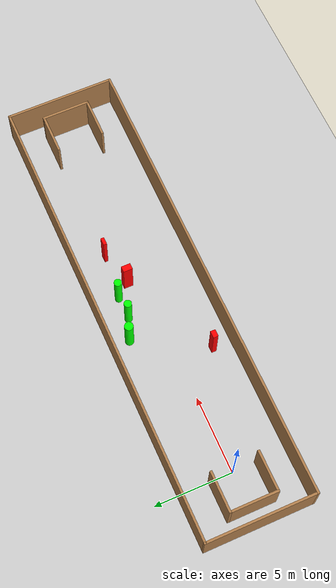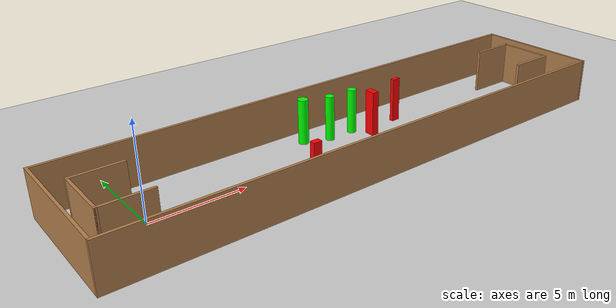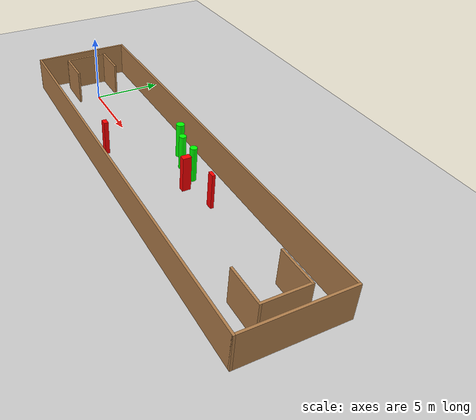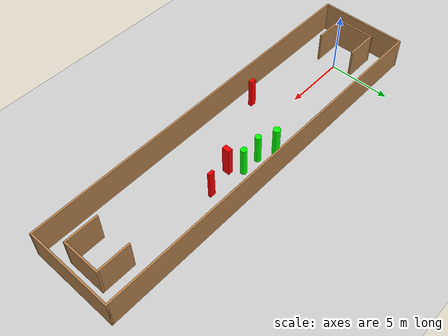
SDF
<sdf version="1.7">
 <world name="default">
  <light name="sun" type="directional">
   <pose>0 0 10 0 -0 0</pose>
   <diffuse>0.8 0.8 0.8 1</diffuse>
   <specular>0.2 0.2 0.2 1</specular>
   <attenuation>
    <range>1000</range>
    <constant>0.9</constant>
    <linear>0.01</linear>
    <quadratic>0.001</quadratic>
   </attenuation>
   <direction>-0.5 0.1 -0.9</direction>
   <spot><inner_angle>0</inner_angle><outer_angle>0</outer_angle><falloff>0</falloff></spot>
  </light>
  <model name="ground_plane">
   <static>1</static>
   <link name="link">
    <collision name="collision">
     <geometry><plane><normal>0 0 1</normal><size>100 100</size></plane></geometry>
     <surface>
      <contact><collide_bitmask>65535</collide_bitmask></contact>
      <friction><ode><mu>100</mu><mu2>50</mu2></ode></friction>
     </surface>
    </collision>
    <visual name="visual">
     <cast_shadows>0</cast_shadows>
     <geometry><plane><normal>0 0 1</normal><size>100 100</size></plane></geometry>
     <material>
      <script><uri>file://media/materials/scripts/gazebo.material</uri><name>Gazebo/Grey</name></script>
     </material>
    </visual>
   </link>
  </model>
  <gravity>0 0 -9.8</gravity>
  <magnetic_field>6e-06 2.3e-05 -4.2e-05</magnetic_field>
  <atmosphere type="adiabatic"/>
  <physics type="ode">
   <max_step_size>0.001</max_step_size>
   <real_time_factor>1</real_time_factor>
   <real_time_update_rate>1000</real_time_update_rate>
  </physics>
  <scene><ambient>0.4 0.4 0.4 1</ambient><background>0.7 0.7 0.7 1</background><shadows>1</shadows></scene>
  <spherical_coordinates>
   <surface_model>EARTH_WGS84</surface_model>
   <latitude_deg>0</latitude_deg>
   <longitude_deg>0</longitude_deg>
   <elevation>0</elevation>
   <heading_deg>0</heading_deg>
  </spherical_coordinates>
  <model name="my_base_walls">
   <link name="Wall_0">
    <collision name="Wall_0_Collision">
     <geometry><box><size>7.15 0.15 2.5</size></box></geometry>
     <pose>0 0 1.25 0 -0 0</pose>
    </collision>
    <visual name="Wall_0_Visual">
     <pose>0 0 1.25 0 -0 0</pose>
     <geometry><box><size>7.15 0.15 2.5</size></box></geometry>
     <material>
      <script><uri>file://media/materials/scripts/gazebo.material</uri><name>Gazebo/Wood</name></script>
      <ambient>1 1 1 1</ambient>
     </material>
     <meta><layer>0</layer></meta>
    </visual>
    <pose>-15 0 0 0 -0 1.5708</pose>
   </link>
   <link name="Wall_10">
    <collision name="Wall_10_Collision">
     <geometry><box><size>2.65 0.15 2.5</size></box></geometry>
     <pose>0 0 1.25 0 -0 0</pose>
    </collision>
    <visual name="Wall_10_Visual">
     <pose>0 0 1.25 0 -0 0</pose>
     <geometry><box><size>2.65 0.15 2.5</size></box></geometry>
     <material>
      <script><uri>file://media/materials/scripts/gazebo.material</uri><name>Gazebo/Wood</name></script>
      <ambient>1 1 1 1</ambient>
     </material>
     <meta><layer>0</layer></meta>
    </visual>
    <pose>-12.75 -1.5 0 0 -0 0</pose>
   </link>
   <link name="Wall_12">
    <collision name="Wall_12_Collision">
     <geometry><box><size>2.65 0.15 2.5</size></box></geometry>
     <pose>0 0 1.25 0 -0 0</pose>
    </collision>
    <visual name="Wall_12_Visual">
     <pose>0 0 1.25 0 -0 0</pose>
     <geometry><box><size>2.65 0.15 2.5</size></box></geometry>
     <material>
      <script><uri>file://media/materials/scripts/gazebo.material</uri><name>Gazebo/Wood</name></script>
      <ambient>1 1 1 1</ambient>
     </material>
     <meta><layer>0</layer></meta>
    </visual>
    <pose>-12.75 1.5 0 0 -0 0</pose>
   </link>
   <link name="Wall_14">
    <collision name="Wall_14_Collision">
     <geometry><box><size>3.15 0.15 2.5</size></box></geometry>
     <pose>0 0 1.25 0 -0 0</pose>
    </collision>
    <visual name="Wall_14_Visual">
     <pose>0 0 1.25 0 -0 0</pose>
     <geometry><box><size>3.15 0.15 2.5</size></box></geometry>
     <material>
      <script><uri>file://media/materials/scripts/gazebo.material</uri><name>Gazebo/Wood</name></script>
      <ambient>1 1 1 1</ambient>
     </material>
     <meta><layer>0</layer></meta>
    </visual>
    <pose>14 0 0 0 -0 -1.5708</pose>
   </link>
   <link name="Wall_15">
    <collision name="Wall_15_Collision">
     <geometry><box><size>2.65 0.15 2.5</size></box></geometry>
     <pose>0 0 1.25 0 -0 0</pose>
    </collision>
    <visual name="Wall_15_Visual">
     <pose>0 0 1.25 0 -0 0</pose>
     <geometry><box><size>2.65 0.15 2.5</size></box></geometry>
     <material>
      <script><uri>file://media/materials/scripts/gazebo.material</uri><name>Gazebo/Wood</name></script>
      <ambient>1 1 1 1</ambient>
     </material>
     <meta><layer>0</layer></meta>
    </visual>
    <pose>12.75 -1.5 0 0 -0 3.14159</pose>
   </link>
   <link name="Wall_17">
    <collision name="Wall_17_Collision">
     <geometry><box><size>2.65 0.15 2.5</size></box></geometry>
     <pose>0 0 1.25 0 -0 0</pose>
    </collision>
    <visual name="Wall_17_Visual">
     <pose>0 0 1.25 0 -0 0</pose>
     <geometry><box><size>2.65 0.15 2.5</size></box></geometry>
     <material>
      <script><uri>file://media/materials/scripts/gazebo.material</uri><name>Gazebo/Wood</name></script>
      <ambient>1 1 1 1</ambient>
     </material>
     <meta><layer>0</layer></meta>
    </visual>
    <pose>12.75 1.5 0 0 -0 3.14159</pose>
   </link>
   <link name="Wall_2">
    <collision name="Wall_2_Collision">
     <geometry><box><size>30.15 0.15 2.5</size></box></geometry>
     <pose>0 0 1.25 0 -0 0</pose>
    </collision>
    <visual name="Wall_2_Visual">
     <pose>0 0 1.25 0 -0 0</pose>
     <geometry><box><size>30.15 0.15 2.5</size></box></geometry>
     <material>
      <script><uri>file://media/materials/scripts/gazebo.material</uri><name>Gazebo/Wood</name></script>
      <ambient>1 1 1 1</ambient>
     </material>
     <meta><layer>0</layer></meta>
    </visual>
    <pose>-0 -3.5 0 0 -0 0</pose>
   </link>
   <link name="Wall_4">
    <collision name="Wall_4_Collision">
     <geometry><box><size>30.15 0.15 2.5</size></box></geometry>
     <pose>0 0 1.25 0 -0 0</pose>
    </collision>
    <visual name="Wall_4_Visual">
     <pose>0 0 1.25 0 -0 0</pose>
     <geometry><box><size>30.15 0.15 2.5</size></box></geometry>
     <material>
      <script><uri>file://media/materials/scripts/gazebo.material</uri><name>Gazebo/Wood</name></script>
      <ambient>1 1 1 1</ambient>
     </material>
     <meta><layer>0</layer></meta>
    </visual>
    <pose>-0 3.5 0 0 -0 0</pose>
   </link>
   <link name="Wall_6">
    <collision name="Wall_6_Collision">
     <geometry><box><size>7.15 0.15 2.5</size></box></geometry>
     <pose>0 0 1.25 0 -0 0</pose>
    </collision>
    <visual name="Wall_6_Visual">
     <pose>0 0 1.25 0 -0 0</pose>
     <geometry><box><size>7.15 0.15 2.5</size></box></geometry>
     <material>
      <script><uri>file://media/materials/scripts/gazebo.material</uri><name>Gazebo/Wood</name></script>
      <ambient>1 1 1 1</ambient>
     </material>
     <meta><layer>0</layer></meta>
    </visual>
    <pose>15 0 0 0 -0 -1.5708</pose>
   </link>
   <link name="Wall_9">
    <collision name="Wall_9_Collision">
     <geometry><box><size>3.15 0.15 2.5</size></box></geometry>
     <pose>0 0 1.25 0 -0 0</pose>
    </collision>
    <visual name="Wall_9_Visual">
     <pose>0 0 1.25 0 -0 0</pose>
     <geometry><box><size>3.15 0.15 2.5</size></box></geometry>
     <material>
      <script><uri>file://media/materials/scripts/gazebo.material</uri><name>Gazebo/Wood</name></script>
      <ambient>1 1 1 1</ambient>
     </material>
     <meta><layer>0</layer></meta>
    </visual>
    <pose>-14 0 0 0 -0 -1.5708</pose>
   </link>
   <static>1</static>
   <pose>11.5 0 0 0 -0 0</pose>
  </model>
  <model name="cylinder1">
   <static>1</static>
   <link name="link">
    <inertial>
     <mass>1</mass>
     <inertia><ixx>0.5</ixx><ixy>0</ixy><ixz>0</ixz><iyy>0.5</iyy><iyz>0</iyz><izz>1</izz></inertia>
    </inertial>
    <collision name="collision">
     <geometry><cylinder><radius>0.27935360409178817</radius><length>2.5</length></cylinder></geometry>
    </collision>
    <visual name="visual">
     <geometry><cylinder><radius>0.27935360409178817</radius><length>2.5</length></cylinder></geometry>
     <material>
      <ambient>0 1 0 1</ambient>
      <diffuse>0 1 0 1</diffuse>
      <specular>0.1 0.1 0.1 1</specular>
      <emissive>0 0 0 0</emissive>
     </material>
    </visual>
   </link>
   <pose>10.020834189299979 2.2403881235733305 1.25 0 0 0</pose>
  </model>
  <model name="cylinder2">
   <static>1</static>
   <link name="link">
    <inertial>
     <mass>1</mass>
     <inertia><ixx>0.5</ixx><ixy>0</ixy><ixz>0</ixz><iyy>0.5</iyy><iyz>0</iyz><izz>1</izz></inertia>
    </inertial>
    <collision name="collision">
     <geometry><cylinder><radius>0.24275783851092342</radius><length>2.5</length></cylinder></geometry>
    </collision>
    <visual name="visual">
     <geometry><cylinder><radius>0.24275783851092342</radius><length>2.5</length></cylinder></geometry>
     <material>
      <ambient>0 1 0 1</ambient>
      <diffuse>0 1 0 1</diffuse>
      <specular>0.1 0.1 0.1 1</specular>
      <emissive>0 0 0 0</emissive>
     </material>
    </visual>
   </link>
   <pose>11.387239883635356 1.7175602627591537 1.25 0 0 0</pose>
  </model>
  <model name="cylinder3">
   <static>1</static>
   <link name="link">
    <inertial>
     <mass>1</mass>
     <inertia><ixx>0.5</ixx><ixy>0</ixy><ixz>0</ixz><iyy>0.5</iyy><iyz>0</iyz><izz>1</izz></inertia>
    </inertial>
    <collision name="collision">
     <geometry><cylinder><radius>0.2410036922884305</radius><length>2.5</length></cylinder></geometry>
    </collision>
    <visual name="visual">
     <geometry><cylinder><radius>0.2410036922884305</radius><length>2.5</length></cylinder></geometry>
     <material>
      <ambient>0 1 0 1</ambient>
      <diffuse>0 1 0 1</diffuse>
      <specular>0.1 0.1 0.1 1</specular>
      <emissive>0 0 0 0</emissive>
     </material>
    </visual>
   </link>
   <pose>12.897379906361907 1.725589847900868 1.25 0 0 0</pose>
  </model>
  <model name="box1">
   <static>1</static>
   <link name="link">
    <inertial>
     <mass>1</mass>
     <inertia><ixx>0.083</ixx><ixy>0</ixy><ixz>0</ixz><iyy>0.083</iyy><iyz>0</iyz><izz>0.083</izz></inertia>
    </inertial>
    <collision name="collision">
     <geometry><box><size>0.4720364438496576 0.22145216493210856 2.5</size></box></geometry>
    </collision>
    <visual name="visual">
     <geometry><box><size>0.4720364438496576 0.22145216493210856 2.5</size></box></geometry>
     <material>
      <ambient>1 0 0 1</ambient>
      <diffuse>1 0 0 1</diffuse>
      <specular>0.1 0.1 0.1 1</specular>
      <emissive>0 0 0 0</emissive>
     </material>
    </visual>
    <sensor name="my_contact" type="contact">
     <contact><collision>box_collision</collision><topic>__default_topic__</topic></contact>
    </sensor>
   </link>
   <pose>15.80844218863337 1.4228690145251601 1.25 0 0 0</pose>
  </model>
  <model name="box2">
   <static>1</static>
   <link name="link">
    <inertial>
     <mass>1</mass>
     <inertia><ixx>0.083</ixx><ixy>0</ixy><ixz>0</ixz><iyy>0.083</iyy><iyz>0</iyz><izz>0.083</izz></inertia>
    </inertial>
    <collision name="collision">
     <geometry><box><size>0.4566586639427784 0.314426010884642 2.5</size></box></geometry>
    </collision>
    <visual name="visual">
     <geometry><box><size>0.4566586639427784 0.314426010884642 2.5</size></box></geometry>
     <material>
      <ambient>1 0 0 1</ambient>
      <diffuse>1 0 0 1</diffuse>
      <specular>0.1 0.1 0.1 1</specular>
      <emissive>0 0 0 0</emissive>
     </material>
    </visual>
    <sensor name="my_contact" type="contact">
     <contact><collision>box_collision</collision><topic>__default_topic__</topic></contact>
    </sensor>
   </link>
   <pose>7.527573974778015 -2.2129854746153845 1.25 0 0 0</pose>
  </model>
  <model name="box3">
   <static>1</static>
   <link name="link">
    <inertial>
     <mass>1</mass>
     <inertia><ixx>0.083</ixx><ixy>0</ixy><ixz>0</ixz><iyy>0.083</iyy><iyz>0</iyz><izz>0.083</izz></inertia>
    </inertial>
    <collision name="collision">
     <geometry><box><size>0.3927973866603177 0.5971264275153553 2.5</size></box></geometry>
    </collision>
    <visual name="visual">
     <geometry><box><size>0.3927973866603177 0.5971264275153553 2.5</size></box></geometry>
     <material>
      <ambient>1 0 0 1</ambient>
      <diffuse>1 0 0 1</diffuse>
      <specular>0.1 0.1 0.1 1</specular>
      <emissive>0 0 0 0</emissive>
     </material>
    </visual>
    <sensor name="my_contact" type="contact">
     <contact><collision>box_collision</collision><topic>__default_topic__</topic></contact>
    </sensor>
   </link>
   <pose>13.586774699585403 0.8341439132707293 1.25 0 0 0</pose>
  </model>
 </world>
</sdf>
